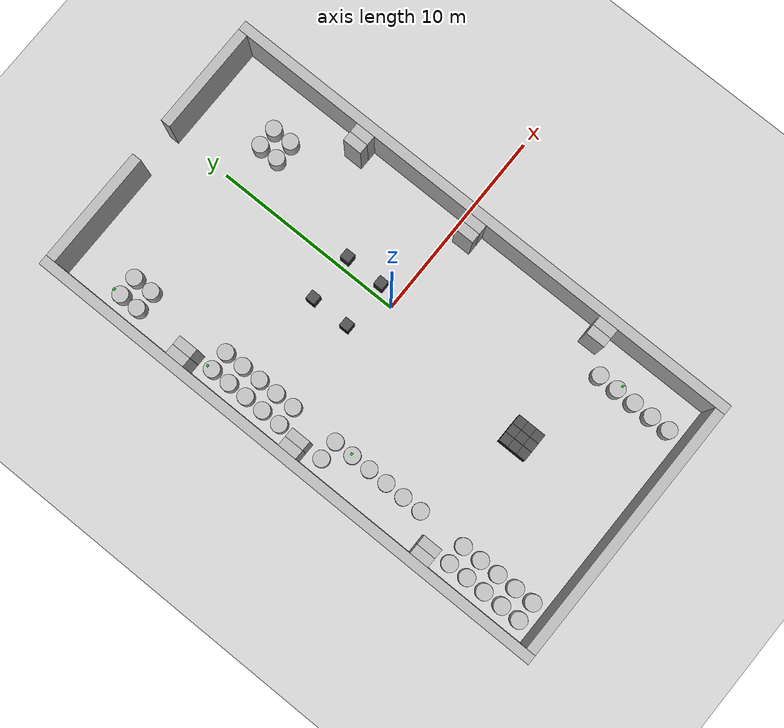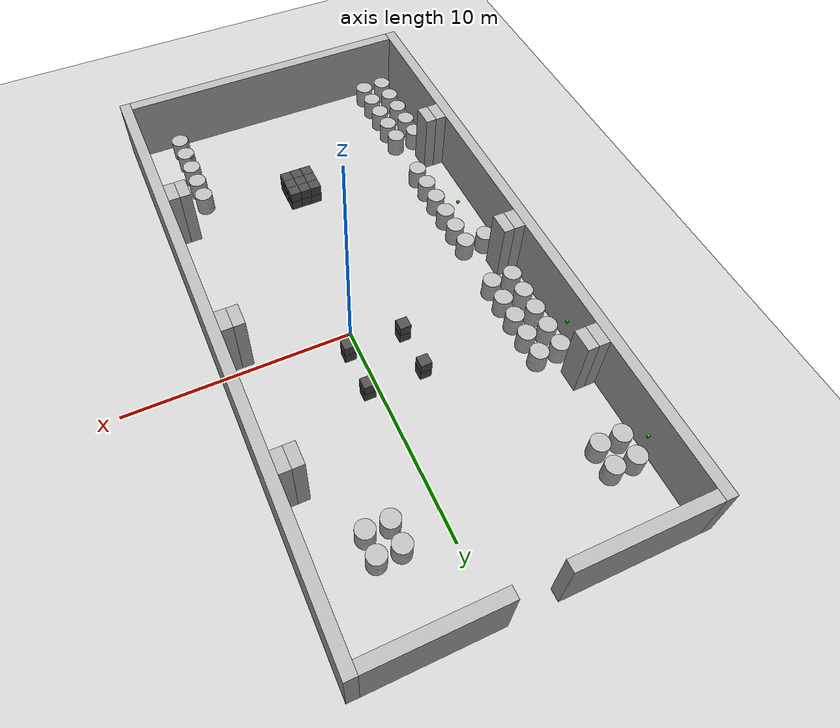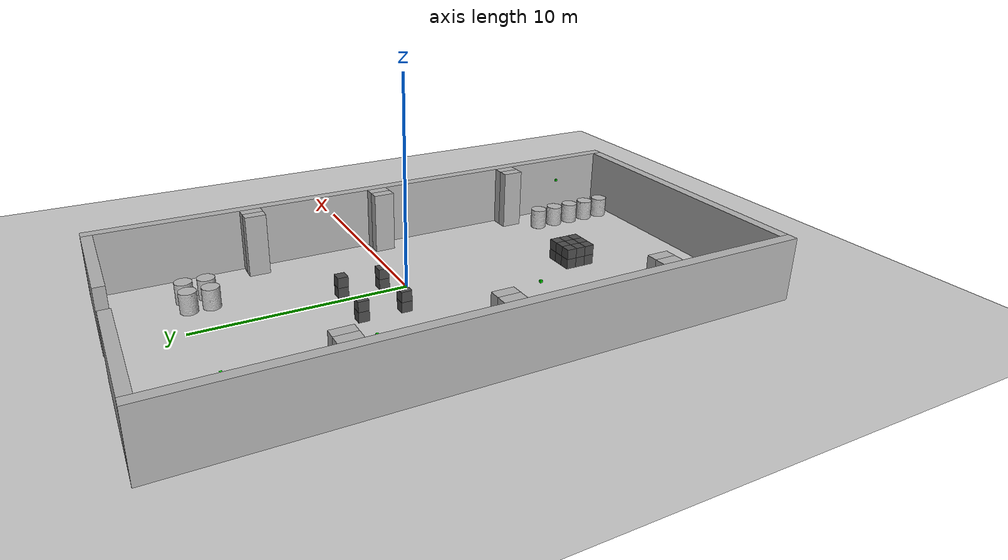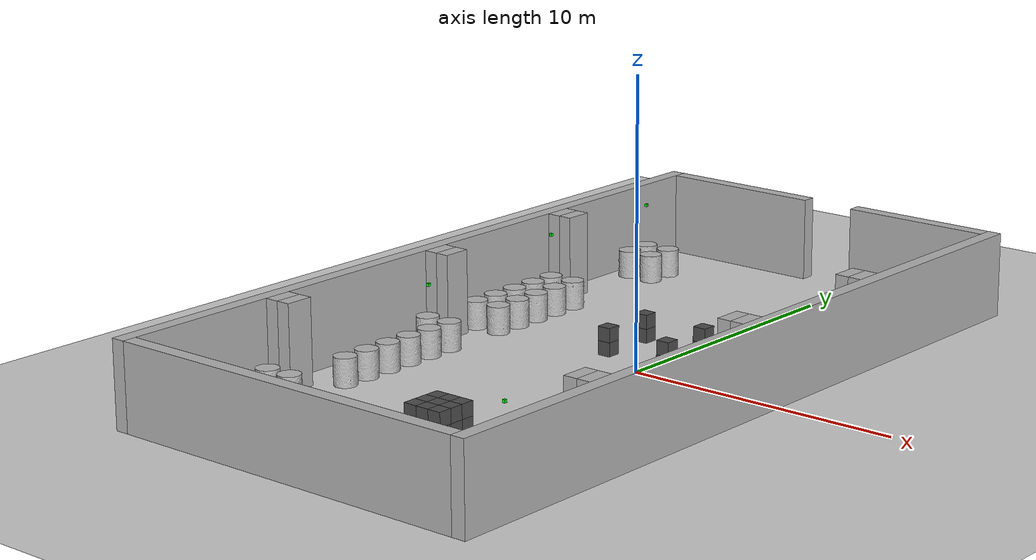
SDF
<sdf version="1.6">
 <world name="default">
  <light name="sun" type="directional">
   <cast_shadows>0</cast_shadows>
   <pose>0 0 10 0 -0 0</pose>
   <diffuse>0.8 0.8 0.8 1</diffuse>
   <specular>0.2 0.2 0.2 1</specular>
   <attenuation>
    <range>1000</range>
    <constant>0.9</constant>
    <linear>0.01</linear>
    <quadratic>0.001</quadratic>
   </attenuation>
   <direction>-0.5 0.1 -0.9</direction>
  </light>
  <include><uri>model://ground_plane</uri></include>
  <gravity>0 0 -9.8</gravity>
  <magnetic_field>6e-06 2.3e-05 -4.2e-05</magnetic_field>
  <atmosphere type="adiabatic"/>
  <physics default="0" name="default_physics" type="ode">
   <max_step_size>0.001</max_step_size>
   <real_time_factor>1</real_time_factor>
   <real_time_update_rate>1000</real_time_update_rate>
  </physics>
  <scene><ambient>0.4 0.4 0.4 1</ambient><background>0.7 0.7 0.7 1</background><shadows>0</shadows></scene>
  <spherical_coordinates>
   <surface_model>EARTH_WGS84</surface_model>
   <latitude_deg>0</latitude_deg>
   <longitude_deg>0</longitude_deg>
   <elevation>0</elevation>
   <heading_deg>0</heading_deg>
  </spherical_coordinates>
  <model name="wall_0">
   <pose frame="sim_world">-8.5 -0.75 1.5 0 0 0</pose>
   <static>True</static>
   <link name="wall_0_link">
    <inertial>
     <mass>100</mass>
     <inertia>
      <ixx>0.166667</ixx>
      <ixy>0</ixy>
      <ixz>0</ixz>
      <iyy>0.166667</iyy>
      <iyz>0</iyz>
      <izz>0.166667</izz>
     </inertia>
    </inertial>
    <collision name="wall_0_collision">
     <geometry><box><size>0.5 28.0 3.0</size></box></geometry>
     <max_contacts>100</max_contacts>
    </collision>
    <visual name="wall_0_visual">
     <geometry><box><size>0.5 28.0 3.0</size></box></geometry>
     <material><ambient>0.7 0.7 0.7 1</ambient><diffuse>0.7 0.7 0.7 1</diffuse></material>
    </visual>
   </link>
  </model>
  <model name="wall_1">
   <pose frame="sim_world">-8.0 -8.25 1.5 0 0 0</pose>
   <static>True</static>
   <link name="wall_1_link">
    <inertial>
     <mass>100</mass>
     <inertia>
      <ixx>0.166667</ixx>
      <ixy>0</ixy>
      <ixz>0</ixz>
      <iyy>0.166667</iyy>
      <iyz>0</iyz>
      <izz>0.166667</izz>
     </inertia>
    </inertial>
    <collision name="wall_1_collision">
     <geometry><box><size>0.5 1.0 3.0</size></box></geometry>
     <max_contacts>100</max_contacts>
    </collision>
    <visual name="wall_1_visual">
     <geometry><box><size>0.5 1.0 3.0</size></box></geometry>
     <material><ambient>0.7 0.7 0.7 1</ambient><diffuse>0.7 0.7 0.7 1</diffuse></material>
    </visual>
   </link>
  </model>
  <model name="wall_2">
   <pose frame="sim_world">-8.0 -0.75 1.5 0 0 0</pose>
   <static>True</static>
   <link name="wall_2_link">
    <inertial>
     <mass>100</mass>
     <inertia>
      <ixx>0.166667</ixx>
      <ixy>0</ixy>
      <ixz>0</ixz>
      <iyy>0.166667</iyy>
      <iyz>0</iyz>
      <izz>0.166667</izz>
     </inertia>
    </inertial>
    <collision name="wall_2_collision">
     <geometry><box><size>0.5 1.0 3.0</size></box></geometry>
     <max_contacts>100</max_contacts>
    </collision>
    <visual name="wall_2_visual">
     <geometry><box><size>0.5 1.0 3.0</size></box></geometry>
     <material><ambient>0.7 0.7 0.7 1</ambient><diffuse>0.7 0.7 0.7 1</diffuse></material>
    </visual>
   </link>
  </model>
  <model name="wall_3">
   <pose frame="sim_world">-8.0 5.75 1.5 0 0 0</pose>
   <static>True</static>
   <link name="wall_3_link">
    <inertial>
     <mass>100</mass>
     <inertia>
      <ixx>0.166667</ixx>
      <ixy>0</ixy>
      <ixz>0</ixz>
      <iyy>0.166667</iyy>
      <iyz>0</iyz>
      <izz>0.166667</izz>
     </inertia>
    </inertial>
    <collision name="wall_3_collision">
     <geometry><box><size>0.5 1.0 3.0</size></box></geometry>
     <max_contacts>100</max_contacts>
    </collision>
    <visual name="wall_3_visual">
     <geometry><box><size>0.5 1.0 3.0</size></box></geometry>
     <material><ambient>0.7 0.7 0.7 1</ambient><diffuse>0.7 0.7 0.7 1</diffuse></material>
    </visual>
   </link>
  </model>
  <model name="wall_4">
   <pose frame="sim_world">-7.5 -8.25 1.5 0 0 0</pose>
   <static>True</static>
   <link name="wall_4_link">
    <inertial>
     <mass>100</mass>
     <inertia>
      <ixx>0.166667</ixx>
      <ixy>0</ixy>
      <ixz>0</ixz>
      <iyy>0.166667</iyy>
      <iyz>0</iyz>
      <izz>0.166667</izz>
     </inertia>
    </inertial>
    <collision name="wall_4_collision">
     <geometry><box><size>0.5 1.0 3.0</size></box></geometry>
     <max_contacts>100</max_contacts>
    </collision>
    <visual name="wall_4_visual">
     <geometry><box><size>0.5 1.0 3.0</size></box></geometry>
     <material><ambient>0.7 0.7 0.7 1</ambient><diffuse>0.7 0.7 0.7 1</diffuse></material>
    </visual>
   </link>
  </model>
  <model name="wall_5">
   <pose frame="sim_world">-7.5 -0.75 1.5 0 0 0</pose>
   <static>True</static>
   <link name="wall_5_link">
    <inertial>
     <mass>100</mass>
     <inertia>
      <ixx>0.166667</ixx>
      <ixy>0</ixy>
      <ixz>0</ixz>
      <iyy>0.166667</iyy>
      <iyz>0</iyz>
      <izz>0.166667</izz>
     </inertia>
    </inertial>
    <collision name="wall_5_collision">
     <geometry><box><size>0.5 1.0 3.0</size></box></geometry>
     <max_contacts>100</max_contacts>
    </collision>
    <visual name="wall_5_visual">
     <geometry><box><size>0.5 1.0 3.0</size></box></geometry>
     <material><ambient>0.7 0.7 0.7 1</ambient><diffuse>0.7 0.7 0.7 1</diffuse></material>
    </visual>
   </link>
  </model>
  <model name="wall_6">
   <pose frame="sim_world">-7.5 5.75 1.5 0 0 0</pose>
   <static>True</static>
   <link name="wall_6_link">
    <inertial>
     <mass>100</mass>
     <inertia>
      <ixx>0.166667</ixx>
      <ixy>0</ixy>
      <ixz>0</ixz>
      <iyy>0.166667</iyy>
      <iyz>0</iyz>
      <izz>0.166667</izz>
     </inertia>
    </inertial>
    <collision name="wall_6_collision">
     <geometry><box><size>0.5 1.0 3.0</size></box></geometry>
     <max_contacts>100</max_contacts>
    </collision>
    <visual name="wall_6_visual">
     <geometry><box><size>0.5 1.0 3.0</size></box></geometry>
     <material><ambient>0.7 0.7 0.7 1</ambient><diffuse>0.7 0.7 0.7 1</diffuse></material>
    </visual>
   </link>
  </model>
  <model name="wall_7">
   <pose frame="sim_world">4.5 -8.25 1.5 0 0 0</pose>
   <static>True</static>
   <link name="wall_7_link">
    <inertial>
     <mass>100</mass>
     <inertia>
      <ixx>0.166667</ixx>
      <ixy>0</ixy>
      <ixz>0</ixz>
      <iyy>0.166667</iyy>
      <iyz>0</iyz>
      <izz>0.166667</izz>
     </inertia>
    </inertial>
    <collision name="wall_7_collision">
     <geometry><box><size>0.5 1.0 3.0</size></box></geometry>
     <max_contacts>100</max_contacts>
    </collision>
    <visual name="wall_7_visual">
     <geometry><box><size>0.5 1.0 3.0</size></box></geometry>
     <material><ambient>0.7 0.7 0.7 1</ambient><diffuse>0.7 0.7 0.7 1</diffuse></material>
    </visual>
   </link>
  </model>
  <model name="wall_8">
   <pose frame="sim_world">4.5 -0.75 1.5 0 0 0</pose>
   <static>True</static>
   <link name="wall_8_link">
    <inertial>
     <mass>100</mass>
     <inertia>
      <ixx>0.166667</ixx>
      <ixy>0</ixy>
      <ixz>0</ixz>
      <iyy>0.166667</iyy>
      <iyz>0</iyz>
      <izz>0.166667</izz>
     </inertia>
    </inertial>
    <collision name="wall_8_collision">
     <geometry><box><size>0.5 1.0 3.0</size></box></geometry>
     <max_contacts>100</max_contacts>
    </collision>
    <visual name="wall_8_visual">
     <geometry><box><size>0.5 1.0 3.0</size></box></geometry>
     <material><ambient>0.7 0.7 0.7 1</ambient><diffuse>0.7 0.7 0.7 1</diffuse></material>
    </visual>
   </link>
  </model>
  <model name="wall_9">
   <pose frame="sim_world">4.5 5.75 1.5 0 0 0</pose>
   <static>True</static>
   <link name="wall_9_link">
    <inertial>
     <mass>100</mass>
     <inertia>
      <ixx>0.166667</ixx>
      <ixy>0</ixy>
      <ixz>0</ixz>
      <iyy>0.166667</iyy>
      <iyz>0</iyz>
      <izz>0.166667</izz>
     </inertia>
    </inertial>
    <collision name="wall_9_collision">
     <geometry><box><size>0.5 1.0 3.0</size></box></geometry>
     <max_contacts>100</max_contacts>
    </collision>
    <visual name="wall_9_visual">
     <geometry><box><size>0.5 1.0 3.0</size></box></geometry>
     <material><ambient>0.7 0.7 0.7 1</ambient><diffuse>0.7 0.7 0.7 1</diffuse></material>
    </visual>
   </link>
  </model>
  <model name="wall_10">
   <pose frame="sim_world">5.0 -8.25 1.5 0 0 0</pose>
   <static>True</static>
   <link name="wall_10_link">
    <inertial>
     <mass>100</mass>
     <inertia>
      <ixx>0.166667</ixx>
      <ixy>0</ixy>
      <ixz>0</ixz>
      <iyy>0.166667</iyy>
      <iyz>0</iyz>
      <izz>0.166667</izz>
     </inertia>
    </inertial>
    <collision name="wall_10_collision">
     <geometry><box><size>0.5 1.0 3.0</size></box></geometry>
     <max_contacts>100</max_contacts>
    </collision>
    <visual name="wall_10_visual">
     <geometry><box><size>0.5 1.0 3.0</size></box></geometry>
     <material><ambient>0.7 0.7 0.7 1</ambient><diffuse>0.7 0.7 0.7 1</diffuse></material>
    </visual>
   </link>
  </model>
  <model name="wall_11">
   <pose frame="sim_world">5.0 -0.75 1.5 0 0 0</pose>
   <static>True</static>
   <link name="wall_11_link">
    <inertial>
     <mass>100</mass>
     <inertia>
      <ixx>0.166667</ixx>
      <ixy>0</ixy>
      <ixz>0</ixz>
      <iyy>0.166667</iyy>
      <iyz>0</iyz>
      <izz>0.166667</izz>
     </inertia>
    </inertial>
    <collision name="wall_11_collision">
     <geometry><box><size>0.5 1.0 3.0</size></box></geometry>
     <max_contacts>100</max_contacts>
    </collision>
    <visual name="wall_11_visual">
     <geometry><box><size>0.5 1.0 3.0</size></box></geometry>
     <material><ambient>0.7 0.7 0.7 1</ambient><diffuse>0.7 0.7 0.7 1</diffuse></material>
    </visual>
   </link>
  </model>
  <model name="wall_12">
   <pose frame="sim_world">5.0 5.75 1.5 0 0 0</pose>
   <static>True</static>
   <link name="wall_12_link">
    <inertial>
     <mass>100</mass>
     <inertia>
      <ixx>0.166667</ixx>
      <ixy>0</ixy>
      <ixz>0</ixz>
      <iyy>0.166667</iyy>
      <iyz>0</iyz>
      <izz>0.166667</izz>
     </inertia>
    </inertial>
    <collision name="wall_12_collision">
     <geometry><box><size>0.5 1.0 3.0</size></box></geometry>
     <max_contacts>100</max_contacts>
    </collision>
    <visual name="wall_12_visual">
     <geometry><box><size>0.5 1.0 3.0</size></box></geometry>
     <material><ambient>0.7 0.7 0.7 1</ambient><diffuse>0.7 0.7 0.7 1</diffuse></material>
    </visual>
   </link>
  </model>
  <model name="wall_13">
   <pose frame="sim_world">5.5 -0.75 1.5 0 0 0</pose>
   <static>True</static>
   <link name="wall_13_link">
    <inertial>
     <mass>100</mass>
     <inertia>
      <ixx>0.166667</ixx>
      <ixy>0</ixy>
      <ixz>0</ixz>
      <iyy>0.166667</iyy>
      <iyz>0</iyz>
      <izz>0.166667</izz>
     </inertia>
    </inertial>
    <collision name="wall_13_collision">
     <geometry><box><size>0.5 28.0 3.0</size></box></geometry>
     <max_contacts>100</max_contacts>
    </collision>
    <visual name="wall_13_visual">
     <geometry><box><size>0.5 28.0 3.0</size></box></geometry>
     <material><ambient>0.7 0.7 0.7 1</ambient><diffuse>0.7 0.7 0.7 1</diffuse></material>
    </visual>
   </link>
  </model>
  <model name="wall_14">
   <pose frame="sim_world">-1.5 -14.5 1.5 0 0 0</pose>
   <static>True</static>
   <link name="wall_14_link">
    <inertial>
     <mass>100</mass>
     <inertia>
      <ixx>0.166667</ixx>
      <ixy>0</ixy>
      <ixz>0</ixz>
      <iyy>0.166667</iyy>
      <iyz>0</iyz>
      <izz>0.166667</izz>
     </inertia>
    </inertial>
    <collision name="wall_14_collision">
     <geometry><box><size>13.5 0.5 3.0</size></box></geometry>
     <max_contacts>100</max_contacts>
    </collision>
    <visual name="wall_14_visual">
     <geometry><box><size>13.5 0.5 3.0</size></box></geometry>
     <material><ambient>0.7 0.7 0.7 1</ambient><diffuse>0.7 0.7 0.7 1</diffuse></material>
    </visual>
   </link>
  </model>
  <model name="wall_15">
   <pose frame="sim_world">-5.25 13.0 1.5 0 0 0</pose>
   <static>True</static>
   <link name="wall_15_link">
    <inertial>
     <mass>100</mass>
     <inertia>
      <ixx>0.166667</ixx>
      <ixy>0</ixy>
      <ixz>0</ixz>
      <iyy>0.166667</iyy>
      <iyz>0</iyz>
      <izz>0.166667</izz>
     </inertia>
    </inertial>
    <collision name="wall_15_collision">
     <geometry><box><size>6.0 0.5 3.0</size></box></geometry>
     <max_contacts>100</max_contacts>
    </collision>
    <visual name="wall_15_visual">
     <geometry><box><size>6.0 0.5 3.0</size></box></geometry>
     <material><ambient>0.7 0.7 0.7 1</ambient><diffuse>0.7 0.7 0.7 1</diffuse></material>
    </visual>
   </link>
  </model>
  <model name="wall_16">
   <pose frame="sim_world">2.5 13.0 1.5 0 0 0</pose>
   <static>True</static>
   <link name="wall_16_link">
    <inertial>
     <mass>100</mass>
     <inertia>
      <ixx>0.166667</ixx>
      <ixy>0</ixy>
      <ixz>0</ixz>
      <iyy>0.166667</iyy>
      <iyz>0</iyz>
      <izz>0.166667</izz>
     </inertia>
    </inertial>
    <collision name="wall_16_collision">
     <geometry><box><size>5.5 0.5 3.0</size></box></geometry>
     <max_contacts>100</max_contacts>
    </collision>
    <visual name="wall_16_visual">
     <geometry><box><size>5.5 0.5 3.0</size></box></geometry>
     <material><ambient>0.7 0.7 0.7 1</ambient><diffuse>0.7 0.7 0.7 1</diffuse></material>
    </visual>
   </link>
  </model>
  <model name="box_0">
   <pose frame="sim_world">-2.0 1.0 0.25 0 -0 0</pose>
   <static>True</static>
   <link name="box_0_link">
    <inertial>
     <mass>100</mass>
     <inertia>
      <ixx>0.166667</ixx>
      <ixy>0</ixy>
      <ixz>0</ixz>
      <iyy>0.166667</iyy>
      <iyz>0</iyz>
      <izz>0.166667</izz>
     </inertia>
    </inertial>
    <collision name="box_0_collision">
     <geometry><box><size>0.5 0.5 0.5</size></box></geometry>
     <max_contacts>100</max_contacts>
    </collision>
    <visual name="box_0_visual">
     <geometry><box><size>0.5 0.5 0.5</size></box></geometry>
     <material><ambient>0.3 0.3 0.3 1</ambient><diffuse>0.3 0.3 0.3 1</diffuse></material>
    </visual>
   </link>
  </model>
  <model name="box_1">
   <pose frame="sim_world">-2.0 1.0 0.75 0 -0 0</pose>
   <static>True</static>
   <link name="box_1_link">
    <inertial>
     <mass>100</mass>
     <inertia>
      <ixx>0.166667</ixx>
      <ixy>0</ixy>
      <ixz>0</ixz>
      <iyy>0.166667</iyy>
      <iyz>0</iyz>
      <izz>0.166667</izz>
     </inertia>
    </inertial>
    <collision name="box_1_collision">
     <geometry><box><size>0.5 0.5 0.5</size></box></geometry>
     <max_contacts>100</max_contacts>
    </collision>
    <visual name="box_1_visual">
     <geometry><box><size>0.5 0.5 0.5</size></box></geometry>
     <material><ambient>0.3 0.3 0.3 1</ambient><diffuse>0.3 0.3 0.3 1</diffuse></material>
    </visual>
   </link>
  </model>
  <model name="box_2">
   <pose frame="sim_world">-2.0 3.0 0.25 0 -0 0</pose>
   <static>True</static>
   <link name="box_2_link">
    <inertial>
     <mass>100</mass>
     <inertia>
      <ixx>0.166667</ixx>
      <ixy>0</ixy>
      <ixz>0</ixz>
      <iyy>0.166667</iyy>
      <iyz>0</iyz>
      <izz>0.166667</izz>
     </inertia>
    </inertial>
    <collision name="box_2_collision">
     <geometry><box><size>0.5 0.5 0.5</size></box></geometry>
     <max_contacts>100</max_contacts>
    </collision>
    <visual name="box_2_visual">
     <geometry><box><size>0.5 0.5 0.5</size></box></geometry>
     <material><ambient>0.3 0.3 0.3 1</ambient><diffuse>0.3 0.3 0.3 1</diffuse></material>
    </visual>
   </link>
  </model>
  <model name="box_3">
   <pose frame="sim_world">-2.0 3.0 0.75 0 -0 0</pose>
   <static>True</static>
   <link name="box_3_link">
    <inertial>
     <mass>100</mass>
     <inertia>
      <ixx>0.166667</ixx>
      <ixy>0</ixy>
      <ixz>0</ixz>
      <iyy>0.166667</iyy>
      <iyz>0</iyz>
      <izz>0.166667</izz>
     </inertia>
    </inertial>
    <collision name="box_3_collision">
     <geometry><box><size>0.5 0.5 0.5</size></box></geometry>
     <max_contacts>100</max_contacts>
    </collision>
    <visual name="box_3_visual">
     <geometry><box><size>0.5 0.5 0.5</size></box></geometry>
     <material><ambient>0.3 0.3 0.3 1</ambient><diffuse>0.3 0.3 0.3 1</diffuse></material>
    </visual>
   </link>
  </model>
  <model name="box_4">
   <pose frame="sim_world">-1.5 -9.0 0.25 0 -0 0</pose>
   <static>True</static>
   <link name="box_4_link">
    <inertial>
     <mass>100</mass>
     <inertia>
      <ixx>0.166667</ixx>
      <ixy>0</ixy>
      <ixz>0</ixz>
      <iyy>0.166667</iyy>
      <iyz>0</iyz>
      <izz>0.166667</izz>
     </inertia>
    </inertial>
    <collision name="box_4_collision">
     <geometry><box><size>0.5 0.5 0.5</size></box></geometry>
     <max_contacts>100</max_contacts>
    </collision>
    <visual name="box_4_visual">
     <geometry><box><size>0.5 0.5 0.5</size></box></geometry>
     <material><ambient>0.3 0.3 0.3 1</ambient><diffuse>0.3 0.3 0.3 1</diffuse></material>
    </visual>
   </link>
  </model>
  <model name="box_5">
   <pose frame="sim_world">-1.5 -9.0 0.75 0 -0 0</pose>
   <static>True</static>
   <link name="box_5_link">
    <inertial>
     <mass>100</mass>
     <inertia>
      <ixx>0.166667</ixx>
      <ixy>0</ixy>
      <ixz>0</ixz>
      <iyy>0.166667</iyy>
      <iyz>0</iyz>
      <izz>0.166667</izz>
     </inertia>
    </inertial>
    <collision name="box_5_collision">
     <geometry><box><size>0.5 0.5 0.5</size></box></geometry>
     <max_contacts>100</max_contacts>
    </collision>
    <visual name="box_5_visual">
     <geometry><box><size>0.5 0.5 0.5</size></box></geometry>
     <material><ambient>0.3 0.3 0.3 1</ambient><diffuse>0.3 0.3 0.3 1</diffuse></material>
    </visual>
   </link>
  </model>
  <model name="box_6">
   <pose frame="sim_world">-1.5 -8.5 0.25 0 -0 0</pose>
   <static>True</static>
   <link name="box_6_link">
    <inertial>
     <mass>100</mass>
     <inertia>
      <ixx>0.166667</ixx>
      <ixy>0</ixy>
      <ixz>0</ixz>
      <iyy>0.166667</iyy>
      <iyz>0</iyz>
      <izz>0.166667</izz>
     </inertia>
    </inertial>
    <collision name="box_6_collision">
     <geometry><box><size>0.5 0.5 0.5</size></box></geometry>
     <max_contacts>100</max_contacts>
    </collision>
    <visual name="box_6_visual">
     <geometry><box><size>0.5 0.5 0.5</size></box></geometry>
     <material><ambient>0.3 0.3 0.3 1</ambient><diffuse>0.3 0.3 0.3 1</diffuse></material>
    </visual>
   </link>
  </model>
  <model name="box_7">
   <pose frame="sim_world">-1.5 -8.5 0.75 0 -0 0</pose>
   <static>True</static>
   <link name="box_7_link">
    <inertial>
     <mass>100</mass>
     <inertia>
      <ixx>0.166667</ixx>
      <ixy>0</ixy>
      <ixz>0</ixz>
      <iyy>0.166667</iyy>
      <iyz>0</iyz>
      <izz>0.166667</izz>
     </inertia>
    </inertial>
    <collision name="box_7_collision">
     <geometry><box><size>0.5 0.5 0.5</size></box></geometry>
     <max_contacts>100</max_contacts>
    </collision>
    <visual name="box_7_visual">
     <geometry><box><size>0.5 0.5 0.5</size></box></geometry>
     <material><ambient>0.3 0.3 0.3 1</ambient><diffuse>0.3 0.3 0.3 1</diffuse></material>
    </visual>
   </link>
  </model>
  <model name="box_8">
   <pose frame="sim_world">-1.5 -8.0 0.25 0 -0 0</pose>
   <static>True</static>
   <link name="box_8_link">
    <inertial>
     <mass>100</mass>
     <inertia>
      <ixx>0.166667</ixx>
      <ixy>0</ixy>
      <ixz>0</ixz>
      <iyy>0.166667</iyy>
      <iyz>0</iyz>
      <izz>0.166667</izz>
     </inertia>
    </inertial>
    <collision name="box_8_collision">
     <geometry><box><size>0.5 0.5 0.5</size></box></geometry>
     <max_contacts>100</max_contacts>
    </collision>
    <visual name="box_8_visual">
     <geometry><box><size>0.5 0.5 0.5</size></box></geometry>
     <material><ambient>0.3 0.3 0.3 1</ambient><diffuse>0.3 0.3 0.3 1</diffuse></material>
    </visual>
   </link>
  </model>
  <model name="box_9">
   <pose frame="sim_world">-1.5 -8.0 0.75 0 -0 0</pose>
   <static>True</static>
   <link name="box_9_link">
    <inertial>
     <mass>100</mass>
     <inertia>
      <ixx>0.166667</ixx>
      <ixy>0</ixy>
      <ixz>0</ixz>
      <iyy>0.166667</iyy>
      <iyz>0</iyz>
      <izz>0.166667</izz>
     </inertia>
    </inertial>
    <collision name="box_9_collision">
     <geometry><box><size>0.5 0.5 0.5</size></box></geometry>
     <max_contacts>100</max_contacts>
    </collision>
    <visual name="box_9_visual">
     <geometry><box><size>0.5 0.5 0.5</size></box></geometry>
     <material><ambient>0.3 0.3 0.3 1</ambient><diffuse>0.3 0.3 0.3 1</diffuse></material>
    </visual>
   </link>
  </model>
  <model name="box_10">
   <pose frame="sim_world">-1.0 -9.0 0.25 0 -0 0</pose>
   <static>True</static>
   <link name="box_10_link">
    <inertial>
     <mass>100</mass>
     <inertia>
      <ixx>0.166667</ixx>
      <ixy>0</ixy>
      <ixz>0</ixz>
      <iyy>0.166667</iyy>
      <iyz>0</iyz>
      <izz>0.166667</izz>
     </inertia>
    </inertial>
    <collision name="box_10_collision">
     <geometry><box><size>0.5 0.5 0.5</size></box></geometry>
     <max_contacts>100</max_contacts>
    </collision>
    <visual name="box_10_visual">
     <geometry><box><size>0.5 0.5 0.5</size></box></geometry>
     <material><ambient>0.3 0.3 0.3 1</ambient><diffuse>0.3 0.3 0.3 1</diffuse></material>
    </visual>
   </link>
  </model>
  <model name="box_11">
   <pose frame="sim_world">-1.0 -9.0 0.75 0 -0 0</pose>
   <static>True</static>
   <link name="box_11_link">
    <inertial>
     <mass>100</mass>
     <inertia>
      <ixx>0.166667</ixx>
      <ixy>0</ixy>
      <ixz>0</ixz>
      <iyy>0.166667</iyy>
      <iyz>0</iyz>
      <izz>0.166667</izz>
     </inertia>
    </inertial>
    <collision name="box_11_collision">
     <geometry><box><size>0.5 0.5 0.5</size></box></geometry>
     <max_contacts>100</max_contacts>
    </collision>
    <visual name="box_11_visual">
     <geometry><box><size>0.5 0.5 0.5</size></box></geometry>
     <material><ambient>0.3 0.3 0.3 1</ambient><diffuse>0.3 0.3 0.3 1</diffuse></material>
    </visual>
   </link>
  </model>
  <model name="box_12">
   <pose frame="sim_world">-1.0 -8.5 0.25 0 -0 0</pose>
   <static>True</static>
   <link name="box_12_link">
    <inertial>
     <mass>100</mass>
     <inertia>
      <ixx>0.166667</ixx>
      <ixy>0</ixy>
      <ixz>0</ixz>
      <iyy>0.166667</iyy>
      <iyz>0</iyz>
      <izz>0.166667</izz>
     </inertia>
    </inertial>
    <collision name="box_12_collision">
     <geometry><box><size>0.5 0.5 0.5</size></box></geometry>
     <max_contacts>100</max_contacts>
    </collision>
    <visual name="box_12_visual">
     <geometry><box><size>0.5 0.5 0.5</size></box></geometry>
     <material><ambient>0.3 0.3 0.3 1</ambient><diffuse>0.3 0.3 0.3 1</diffuse></material>
    </visual>
   </link>
  </model>
  <model name="box_13">
   <pose frame="sim_world">-1.0 -8.5 0.75 0 -0 0</pose>
   <static>True</static>
   <link name="box_13_link">
    <inertial>
     <mass>100</mass>
     <inertia>
      <ixx>0.166667</ixx>
      <ixy>0</ixy>
      <ixz>0</ixz>
      <iyy>0.166667</iyy>
      <iyz>0</iyz>
      <izz>0.166667</izz>
     </inertia>
    </inertial>
    <collision name="box_13_collision">
     <geometry><box><size>0.5 0.5 0.5</size></box></geometry>
     <max_contacts>100</max_contacts>
    </collision>
    <visual name="box_13_visual">
     <geometry><box><size>0.5 0.5 0.5</size></box></geometry>
     <material><ambient>0.3 0.3 0.3 1</ambient><diffuse>0.3 0.3 0.3 1</diffuse></material>
    </visual>
   </link>
  </model>
  <model name="box_14">
   <pose frame="sim_world">-1.0 -8.0 0.25 0 -0 0</pose>
   <static>True</static>
   <link name="box_14_link">
    <inertial>
     <mass>100</mass>
     <inertia>
      <ixx>0.166667</ixx>
      <ixy>0</ixy>
      <ixz>0</ixz>
      <iyy>0.166667</iyy>
      <iyz>0</iyz>
      <izz>0.166667</izz>
     </inertia>
    </inertial>
    <collision name="box_14_collision">
     <geometry><box><size>0.5 0.5 0.5</size></box></geometry>
     <max_contacts>100</max_contacts>
    </collision>
    <visual name="box_14_visual">
     <geometry><box><size>0.5 0.5 0.5</size></box></geometry>
     <material><ambient>0.3 0.3 0.3 1</ambient><diffuse>0.3 0.3 0.3 1</diffuse></material>
    </visual>
   </link>
  </model>
  <model name="box_15">
   <pose frame="sim_world">-1.0 -8.0 0.75 0 -0 0</pose>
   <static>True</static>
   <link name="box_15_link">
    <inertial>
     <mass>100</mass>
     <inertia>
      <ixx>0.166667</ixx>
      <ixy>0</ixy>
      <ixz>0</ixz>
      <iyy>0.166667</iyy>
      <iyz>0</iyz>
      <izz>0.166667</izz>
     </inertia>
    </inertial>
    <collision name="box_15_collision">
     <geometry><box><size>0.5 0.5 0.5</size></box></geometry>
     <max_contacts>100</max_contacts>
    </collision>
    <visual name="box_15_visual">
     <geometry><box><size>0.5 0.5 0.5</size></box></geometry>
     <material><ambient>0.3 0.3 0.3 1</ambient><diffuse>0.3 0.3 0.3 1</diffuse></material>
    </visual>
   </link>
  </model>
  <model name="box_16">
   <pose frame="sim_world">-0.5 -9.0 0.25 0 -0 0</pose>
   <static>True</static>
   <link name="box_16_link">
    <inertial>
     <mass>100</mass>
     <inertia>
      <ixx>0.166667</ixx>
      <ixy>0</ixy>
      <ixz>0</ixz>
      <iyy>0.166667</iyy>
      <iyz>0</iyz>
      <izz>0.166667</izz>
     </inertia>
    </inertial>
    <collision name="box_16_collision">
     <geometry><box><size>0.5 0.5 0.5</size></box></geometry>
     <max_contacts>100</max_contacts>
    </collision>
    <visual name="box_16_visual">
     <geometry><box><size>0.5 0.5 0.5</size></box></geometry>
     <material><ambient>0.3 0.3 0.3 1</ambient><diffuse>0.3 0.3 0.3 1</diffuse></material>
    </visual>
   </link>
  </model>
  <model name="box_17">
   <pose frame="sim_world">-0.5 -9.0 0.75 0 -0 0</pose>
   <static>True</static>
   <link name="box_17_link">
    <inertial>
     <mass>100</mass>
     <inertia>
      <ixx>0.166667</ixx>
      <ixy>0</ixy>
      <ixz>0</ixz>
      <iyy>0.166667</iyy>
      <iyz>0</iyz>
      <izz>0.166667</izz>
     </inertia>
    </inertial>
    <collision name="box_17_collision">
     <geometry><box><size>0.5 0.5 0.5</size></box></geometry>
     <max_contacts>100</max_contacts>
    </collision>
    <visual name="box_17_visual">
     <geometry><box><size>0.5 0.5 0.5</size></box></geometry>
     <material><ambient>0.3 0.3 0.3 1</ambient><diffuse>0.3 0.3 0.3 1</diffuse></material>
    </visual>
   </link>
  </model>
  <model name="box_18">
   <pose frame="sim_world">-0.5 -8.5 0.25 0 -0 0</pose>
   <static>True</static>
   <link name="box_18_link">
    <inertial>
     <mass>100</mass>
     <inertia>
      <ixx>0.166667</ixx>
      <ixy>0</ixy>
      <ixz>0</ixz>
      <iyy>0.166667</iyy>
      <iyz>0</iyz>
      <izz>0.166667</izz>
     </inertia>
    </inertial>
    <collision name="box_18_collision">
     <geometry><box><size>0.5 0.5 0.5</size></box></geometry>
     <max_contacts>100</max_contacts>
    </collision>
    <visual name="box_18_visual">
     <geometry><box><size>0.5 0.5 0.5</size></box></geometry>
     <material><ambient>0.3 0.3 0.3 1</ambient><diffuse>0.3 0.3 0.3 1</diffuse></material>
    </visual>
   </link>
  </model>
  <model name="box_19">
   <pose frame="sim_world">-0.5 -8.5 0.75 0 -0 0</pose>
   <static>True</static>
   <link name="box_19_link">
    <inertial>
     <mass>100</mass>
     <inertia>
      <ixx>0.166667</ixx>
      <ixy>0</ixy>
      <ixz>0</ixz>
      <iyy>0.166667</iyy>
      <iyz>0</iyz>
      <izz>0.166667</izz>
     </inertia>
    </inertial>
    <collision name="box_19_collision">
     <geometry><box><size>0.5 0.5 0.5</size></box></geometry>
     <max_contacts>100</max_contacts>
    </collision>
    <visual name="box_19_visual">
     <geometry><box><size>0.5 0.5 0.5</size></box></geometry>
     <material><ambient>0.3 0.3 0.3 1</ambient><diffuse>0.3 0.3 0.3 1</diffuse></material>
    </visual>
   </link>
  </model>
  <model name="box_20">
   <pose frame="sim_world">-0.5 -8.0 0.25 0 -0 0</pose>
   <static>True</static>
   <link name="box_20_link">
    <inertial>
     <mass>100</mass>
     <inertia>
      <ixx>0.166667</ixx>
      <ixy>0</ixy>
      <ixz>0</ixz>
      <iyy>0.166667</iyy>
      <iyz>0</iyz>
      <izz>0.166667</izz>
     </inertia>
    </inertial>
    <collision name="box_20_collision">
     <geometry><box><size>0.5 0.5 0.5</size></box></geometry>
     <max_contacts>100</max_contacts>
    </collision>
    <visual name="box_20_visual">
     <geometry><box><size>0.5 0.5 0.5</size></box></geometry>
     <material><ambient>0.3 0.3 0.3 1</ambient><diffuse>0.3 0.3 0.3 1</diffuse></material>
    </visual>
   </link>
  </model>
  <model name="box_21">
   <pose frame="sim_world">-0.5 -8.0 0.75 0 -0 0</pose>
   <static>True</static>
   <link name="box_21_link">
    <inertial>
     <mass>100</mass>
     <inertia>
      <ixx>0.166667</ixx>
      <ixy>0</ixy>
      <ixz>0</ixz>
      <iyy>0.166667</iyy>
      <iyz>0</iyz>
      <izz>0.166667</izz>
     </inertia>
    </inertial>
    <collision name="box_21_collision">
     <geometry><box><size>0.5 0.5 0.5</size></box></geometry>
     <max_contacts>100</max_contacts>
    </collision>
    <visual name="box_21_visual">
     <geometry><box><size>0.5 0.5 0.5</size></box></geometry>
     <material><ambient>0.3 0.3 0.3 1</ambient><diffuse>0.3 0.3 0.3 1</diffuse></material>
    </visual>
   </link>
  </model>
  <model name="box_22">
   <pose frame="sim_world">0.5 1.0 0.25 0 -0 0</pose>
   <static>True</static>
   <link name="box_22_link">
    <inertial>
     <mass>100</mass>
     <inertia>
      <ixx>0.166667</ixx>
      <ixy>0</ixy>
      <ixz>0</ixz>
      <iyy>0.166667</iyy>
      <iyz>0</iyz>
      <izz>0.166667</izz>
     </inertia>
    </inertial>
    <collision name="box_22_collision">
     <geometry><box><size>0.5 0.5 0.5</size></box></geometry>
     <max_contacts>100</max_contacts>
    </collision>
    <visual name="box_22_visual">
     <geometry><box><size>0.5 0.5 0.5</size></box></geometry>
     <material><ambient>0.3 0.3 0.3 1</ambient><diffuse>0.3 0.3 0.3 1</diffuse></material>
    </visual>
   </link>
  </model>
  <model name="box_23">
   <pose frame="sim_world">0.5 1.0 0.75 0 -0 0</pose>
   <static>True</static>
   <link name="box_23_link">
    <inertial>
     <mass>100</mass>
     <inertia>
      <ixx>0.166667</ixx>
      <ixy>0</ixy>
      <ixz>0</ixz>
      <iyy>0.166667</iyy>
      <iyz>0</iyz>
      <izz>0.166667</izz>
     </inertia>
    </inertial>
    <collision name="box_23_collision">
     <geometry><box><size>0.5 0.5 0.5</size></box></geometry>
     <max_contacts>100</max_contacts>
    </collision>
    <visual name="box_23_visual">
     <geometry><box><size>0.5 0.5 0.5</size></box></geometry>
     <material><ambient>0.3 0.3 0.3 1</ambient><diffuse>0.3 0.3 0.3 1</diffuse></material>
    </visual>
   </link>
  </model>
  <model name="box_24">
   <pose frame="sim_world">0.5 3.0 0.25 0 -0 0</pose>
   <static>True</static>
   <link name="box_24_link">
    <inertial>
     <mass>100</mass>
     <inertia>
      <ixx>0.166667</ixx>
      <ixy>0</ixy>
      <ixz>0</ixz>
      <iyy>0.166667</iyy>
      <iyz>0</iyz>
      <izz>0.166667</izz>
     </inertia>
    </inertial>
    <collision name="box_24_collision">
     <geometry><box><size>0.5 0.5 0.5</size></box></geometry>
     <max_contacts>100</max_contacts>
    </collision>
    <visual name="box_24_visual">
     <geometry><box><size>0.5 0.5 0.5</size></box></geometry>
     <material><ambient>0.3 0.3 0.3 1</ambient><diffuse>0.3 0.3 0.3 1</diffuse></material>
    </visual>
   </link>
  </model>
  <model name="box_25">
   <pose frame="sim_world">0.5 3.0 0.75 0 -0 0</pose>
   <static>True</static>
   <link name="box_25_link">
    <inertial>
     <mass>100</mass>
     <inertia>
      <ixx>0.166667</ixx>
      <ixy>0</ixy>
      <ixz>0</ixz>
      <iyy>0.166667</iyy>
      <iyz>0</iyz>
      <izz>0.166667</izz>
     </inertia>
    </inertial>
    <collision name="box_25_collision">
     <geometry><box><size>0.5 0.5 0.5</size></box></geometry>
     <max_contacts>100</max_contacts>
    </collision>
    <visual name="box_25_visual">
     <geometry><box><size>0.5 0.5 0.5</size></box></geometry>
     <material><ambient>0.3 0.3 0.3 1</ambient><diffuse>0.3 0.3 0.3 1</diffuse></material>
    </visual>
   </link>
  </model>
  <model name="barrel_0">
   <pose>-7.49946386043 -13.4956394423 0.5 0 -0 0</pose>
   <static>true</static>
   <link name="link_barrel_0">
    <collision name="collision_barrel_0">
     <geometry><mesh><uri>model://barrel_store_custom/models/barrel_0.dae</uri></mesh></geometry>
    </collision>
    <visual name="visual_barrel_0">
     <geometry><mesh><uri>model://barrel_store_custom/models/barrel_0.dae</uri></mesh></geometry>
    </visual>
   </link>
  </model>
  <model name="barrel_1">
   <pose>-7.49531910349 -12.4995036273 0.5 0 -0 0</pose>
   <static>true</static>
   <link name="link_barrel_1">
    <collision name="collision_barrel_1">
     <geometry><mesh><uri>model://barrel_store_custom/models/barrel_1.dae</uri></mesh></geometry>
    </collision>
    <visual name="visual_barrel_1">
     <geometry><mesh><uri>model://barrel_store_custom/models/barrel_1.dae</uri></mesh></geometry>
    </visual>
   </link>
  </model>
  <model name="barrel_2">
   <pose>-7.50325126906 -11.4971504168 0.5 0 -0 0</pose>
   <static>true</static>
   <link name="link_barrel_2">
    <collision name="collision_barrel_2">
     <geometry><mesh><uri>model://barrel_store_custom/models/barrel_2.dae</uri></mesh></geometry>
    </collision>
    <visual name="visual_barrel_2">
     <geometry><mesh><uri>model://barrel_store_custom/models/barrel_2.dae</uri></mesh></geometry>
    </visual>
   </link>
  </model>
  <model name="barrel_3">
   <pose>-7.49551055436 -10.4985981043 0.5 0 -0 0</pose>
   <static>true</static>
   <link name="link_barrel_3">
    <collision name="collision_barrel_3">
     <geometry><mesh><uri>model://barrel_store_custom/models/barrel_3.dae</uri></mesh></geometry>
    </collision>
    <visual name="visual_barrel_3">
     <geometry><mesh><uri>model://barrel_store_custom/models/barrel_3.dae</uri></mesh></geometry>
    </visual>
   </link>
  </model>
  <model name="barrel_4">
   <pose>-7.50290582448 -9.49903662212 0.5 0 -0 0</pose>
   <static>true</static>
   <link name="link_barrel_4">
    <collision name="collision_barrel_4">
     <geometry><mesh><uri>model://barrel_store_custom/models/barrel_4.dae</uri></mesh></geometry>
    </collision>
    <visual name="visual_barrel_4">
     <geometry><mesh><uri>model://barrel_store_custom/models/barrel_4.dae</uri></mesh></geometry>
    </visual>
   </link>
  </model>
  <model name="barrel_10">
   <pose>-7.50114239477 -1.9993578155 0.5 0 -0 0</pose>
   <static>true</static>
   <link name="link_barrel_10">
    <collision name="collision_barrel_10">
     <geometry><mesh><uri>model://barrel_store_custom/models/barrel_10.dae</uri></mesh></geometry>
    </collision>
    <visual name="visual_barrel_10">
     <geometry><mesh><uri>model://barrel_store_custom/models/barrel_10.dae</uri></mesh></geometry>
    </visual>
   </link>
  </model>
  <model name="barrel_11">
   <pose>-7.50279670955 0.49588956778 0.5 0 -0 0</pose>
   <static>true</static>
   <link name="link_barrel_11">
    <collision name="collision_barrel_11">
     <geometry><mesh><uri>model://barrel_store_custom/models/barrel_11.dae</uri></mesh></geometry>
    </collision>
    <visual name="visual_barrel_11">
     <geometry><mesh><uri>model://barrel_store_custom/models/barrel_11.dae</uri></mesh></geometry>
    </visual>
   </link>
  </model>
  <model name="barrel_12">
   <pose>-7.50300625578 1.49810745039 0.5 0 -0 0</pose>
   <static>true</static>
   <link name="link_barrel_12">
    <collision name="collision_barrel_12">
     <geometry><mesh><uri>model://barrel_store_custom/models/barrel_12.dae</uri></mesh></geometry>
    </collision>
    <visual name="visual_barrel_12">
     <geometry><mesh><uri>model://barrel_store_custom/models/barrel_12.dae</uri></mesh></geometry>
    </visual>
   </link>
  </model>
  <model name="barrel_13">
   <pose>-7.49558838549 2.49713480999 0.5 0 -0 0</pose>
   <static>true</static>
   <link name="link_barrel_13">
    <collision name="collision_barrel_13">
     <geometry><mesh><uri>model://barrel_store_custom/models/barrel_13.dae</uri></mesh></geometry>
    </collision>
    <visual name="visual_barrel_13">
     <geometry><mesh><uri>model://barrel_store_custom/models/barrel_13.dae</uri></mesh></geometry>
    </visual>
   </link>
  </model>
  <model name="barrel_14">
   <pose>-7.50188878479 3.49967507384 0.5 0 -0 0</pose>
   <static>true</static>
   <link name="link_barrel_14">
    <collision name="collision_barrel_14">
     <geometry><mesh><uri>model://barrel_store_custom/models/barrel_14.dae</uri></mesh></geometry>
    </collision>
    <visual name="visual_barrel_14">
     <geometry><mesh><uri>model://barrel_store_custom/models/barrel_14.dae</uri></mesh></geometry>
    </visual>
   </link>
  </model>
  <model name="barrel_15">
   <pose>-7.50159085069 4.49686885913 0.5 0 -0 0</pose>
   <static>true</static>
   <link name="link_barrel_15">
    <collision name="collision_barrel_15">
     <geometry><mesh><uri>model://barrel_store_custom/models/barrel_15.dae</uri></mesh></geometry>
    </collision>
    <visual name="visual_barrel_15">
     <geometry><mesh><uri>model://barrel_store_custom/models/barrel_15.dae</uri></mesh></geometry>
    </visual>
   </link>
   <model name="radiation_source_barrel_15">
    <pose>0.00109201669693 0.00354701280594 -1.72853469849e-06 0 0 0</pose>
    <static>true</static>
    <link name="link_radiation_source_barrel_15">
     <visual name="visual_radiation_source_barrel_15_0">
      <geometry><box><size>0.1 0.1 0.1</size></box></geometry>
      <material><ambient>1 0.0  0 1.0</ambient><diffuse>1 0.0  0 1.0</diffuse></material>
     </visual>
     <visual name="visual_radiation_source_barrel_15_1">
      <pose>0 0 2.0 0 0 0</pose>
      <geometry><box><size>0.1 0.1 0.1</size></box></geometry>
      <material><ambient>0 1.0  0 1.0</ambient><diffuse>0 1.0  0 1.0</diffuse></material>
     </visual>
     <sensor name="radiation_source_barrel_15" type="radiation_source">
      <always_on>1</always_on>
      <update_rate>1.0</update_rate>
      <topic>source_1/gamma</topic>
      <plugin filename="libradiation_source_plugin.so" name="radiation_source_plugin"/>
     </sensor>
    </link>
   </model>
  </model>
  <model name="barrel_16">
   <pose>-7.50246693743 9.0035488383 0.5 0 -0 0</pose>
   <static>true</static>
   <link name="link_barrel_16">
    <collision name="collision_barrel_16">
     <geometry><mesh><uri>model://barrel_store_custom/models/barrel_16.dae</uri></mesh></geometry>
    </collision>
    <visual name="visual_barrel_16">
     <geometry><mesh><uri>model://barrel_store_custom/models/barrel_16.dae</uri></mesh></geometry>
    </visual>
   </link>
  </model>
  <model name="barrel_17">
   <pose>-7.50246590527 9.99768880188 0.5 0 -0 0</pose>
   <static>true</static>
   <link name="link_barrel_17">
    <collision name="collision_barrel_17">
     <geometry><mesh><uri>model://barrel_store_custom/models/barrel_17.dae</uri></mesh></geometry>
    </collision>
    <visual name="visual_barrel_17">
     <geometry><mesh><uri>model://barrel_store_custom/models/barrel_17.dae</uri></mesh></geometry>
    </visual>
   </link>
   <model name="radiation_source_barrel_17">
    <pose>0.0042559504509 -0.000965476036072 -1.72853469849e-06 0 0 0</pose>
    <static>true</static>
    <link name="link_radiation_source_barrel_17">
     <visual name="visual_radiation_source_barrel_17_0">
      <geometry><box><size>0.1 0.1 0.1</size></box></geometry>
      <material><ambient>1 0.0  0 1.0</ambient><diffuse>1 0.0  0 1.0</diffuse></material>
     </visual>
     <visual name="visual_radiation_source_barrel_17_1">
      <pose>0 0 2.0 0 0 0</pose>
      <geometry><box><size>0.1 0.1 0.1</size></box></geometry>
      <material><ambient>0 1.0  0 1.0</ambient><diffuse>0 1.0  0 1.0</diffuse></material>
     </visual>
     <sensor name="radiation_source_barrel_17" type="radiation_source">
      <always_on>1</always_on>
      <update_rate>1.0</update_rate>
      <topic>source_3/gamma</topic>
      <plugin filename="libradiation_source_plugin.so" name="radiation_source_plugin"/>
     </sensor>
    </link>
   </model>
  </model>
  <model name="barrel_18">
   <pose>-6.49693306228 -13.5004257762 0.5 0 -0 0</pose>
   <static>true</static>
   <link name="link_barrel_18">
    <collision name="collision_barrel_18">
     <geometry><mesh><uri>model://barrel_store_custom/models/barrel_18.dae</uri></mesh></geometry>
    </collision>
    <visual name="visual_barrel_18">
     <geometry><mesh><uri>model://barrel_store_custom/models/barrel_18.dae</uri></mesh></geometry>
    </visual>
   </link>
  </model>
  <model name="barrel_19">
   <pose>-6.49695345535 -12.5018535626 0.5 0 -0 0</pose>
   <static>true</static>
   <link name="link_barrel_19">
    <collision name="collision_barrel_19">
     <geometry><mesh><uri>model://barrel_store_custom/models/barrel_19.dae</uri></mesh></geometry>
    </collision>
    <visual name="visual_barrel_19">
     <geometry><mesh><uri>model://barrel_store_custom/models/barrel_19.dae</uri></mesh></geometry>
    </visual>
   </link>
  </model>
  <model name="barrel_20">
   <pose>-6.50212149624 -11.496830809 0.5 0 -0 0</pose>
   <static>true</static>
   <link name="link_barrel_20">
    <collision name="collision_barrel_20">
     <geometry><mesh><uri>model://barrel_store_custom/models/barrel_20.dae</uri></mesh></geometry>
    </collision>
    <visual name="visual_barrel_20">
     <geometry><mesh><uri>model://barrel_store_custom/models/barrel_20.dae</uri></mesh></geometry>
    </visual>
   </link>
  </model>
  <model name="barrel_21">
   <pose>-6.50454517076 -10.4964281128 0.5 0 -0 0</pose>
   <static>true</static>
   <link name="link_barrel_21">
    <collision name="collision_barrel_21">
     <geometry><mesh><uri>model://barrel_store_custom/models/barrel_21.dae</uri></mesh></geometry>
    </collision>
    <visual name="visual_barrel_21">
     <geometry><mesh><uri>model://barrel_store_custom/models/barrel_21.dae</uri></mesh></geometry>
    </visual>
   </link>
  </model>
  <model name="barrel_22">
   <pose>-6.50299599045 -9.50155309343 0.5 0 -0 0</pose>
   <static>true</static>
   <link name="link_barrel_22">
    <collision name="collision_barrel_22">
     <geometry><mesh><uri>model://barrel_store_custom/models/barrel_22.dae</uri></mesh></geometry>
    </collision>
    <visual name="visual_barrel_22">
     <geometry><mesh><uri>model://barrel_store_custom/models/barrel_22.dae</uri></mesh></geometry>
    </visual>
   </link>
  </model>
  <model name="barrel_23">
   <pose>-6.49629804898 -6.99982288057 0.5 0 -0 0</pose>
   <static>true</static>
   <link name="link_barrel_23">
    <collision name="collision_barrel_23">
     <geometry><mesh><uri>model://barrel_store_custom/models/barrel_23.dae</uri></mesh></geometry>
    </collision>
    <visual name="visual_barrel_23">
     <geometry><mesh><uri>model://barrel_store_custom/models/barrel_23.dae</uri></mesh></geometry>
    </visual>
   </link>
  </model>
  <model name="barrel_24">
   <pose>-6.50458308935 -5.99709717446 0.5 0 -0 0</pose>
   <static>true</static>
   <link name="link_barrel_24">
    <collision name="collision_barrel_24">
     <geometry><mesh><uri>model://barrel_store_custom/models/barrel_24.dae</uri></mesh></geometry>
    </collision>
    <visual name="visual_barrel_24">
     <geometry><mesh><uri>model://barrel_store_custom/models/barrel_24.dae</uri></mesh></geometry>
    </visual>
   </link>
  </model>
  <model name="barrel_25">
   <pose>-6.50007409914 -4.99692166561 0.5 0 -0 0</pose>
   <static>true</static>
   <link name="link_barrel_25">
    <collision name="collision_barrel_25">
     <geometry><mesh><uri>model://barrel_store_custom/models/barrel_25.dae</uri></mesh></geometry>
    </collision>
    <visual name="visual_barrel_25">
     <geometry><mesh><uri>model://barrel_store_custom/models/barrel_25.dae</uri></mesh></geometry>
    </visual>
   </link>
  </model>
  <model name="barrel_26">
   <pose>-6.50052807486 -4.00340981999 0.5 0 -0 0</pose>
   <static>true</static>
   <link name="link_barrel_26">
    <collision name="collision_barrel_26">
     <geometry><mesh><uri>model://barrel_store_custom/models/barrel_26.dae</uri></mesh></geometry>
    </collision>
    <visual name="visual_barrel_26">
     <geometry><mesh><uri>model://barrel_store_custom/models/barrel_26.dae</uri></mesh></geometry>
    </visual>
   </link>
  </model>
  <model name="barrel_27">
   <pose>-6.50053900119 -3.00223052578 0.5 0 -0 0</pose>
   <static>true</static>
   <link name="link_barrel_27">
    <collision name="collision_barrel_27">
     <geometry><mesh><uri>model://barrel_store_custom/models/barrel_27.dae</uri></mesh></geometry>
    </collision>
    <visual name="visual_barrel_27">
     <geometry><mesh><uri>model://barrel_store_custom/models/barrel_27.dae</uri></mesh></geometry>
    </visual>
   </link>
   <model name="radiation_source_barrel_27">
    <pose>0.00483101606369 -0.000752449035645 -1.72853469849e-06 0 0 0</pose>
    <static>true</static>
    <link name="link_radiation_source_barrel_27">
     <visual name="visual_radiation_source_barrel_27_0">
      <geometry><box><size>0.1 0.1 0.1</size></box></geometry>
      <material><ambient>1 0.0  0 1.0</ambient><diffuse>1 0.0  0 1.0</diffuse></material>
     </visual>
     <visual name="visual_radiation_source_barrel_27_1">
      <pose>0 0 2.0 0 0 0</pose>
      <geometry><box><size>0.1 0.1 0.1</size></box></geometry>
      <material><ambient>0 1.0  0 1.0</ambient><diffuse>0 1.0  0 1.0</diffuse></material>
     </visual>
     <sensor name="radiation_source_barrel_27" type="radiation_source">
      <always_on>1</always_on>
      <update_rate>1.0</update_rate>
      <topic>source_4/gamma</topic>
      <plugin filename="libradiation_source_plugin.so" name="radiation_source_plugin"/>
     </sensor>
    </link>
   </model>
  </model>
  <model name="barrel_28">
   <pose>-6.50231335976 -2.00365457262 0.5 0 -0 0</pose>
   <static>true</static>
   <link name="link_barrel_28">
    <collision name="collision_barrel_28">
     <geometry><mesh><uri>model://barrel_store_custom/models/barrel_28.dae</uri></mesh></geometry>
    </collision>
    <visual name="visual_barrel_28">
     <geometry><mesh><uri>model://barrel_store_custom/models/barrel_28.dae</uri></mesh></geometry>
    </visual>
   </link>
  </model>
  <model name="barrel_29">
   <pose>-6.49702010359 0.501031346884 0.5 0 -0 0</pose>
   <static>true</static>
   <link name="link_barrel_29">
    <collision name="collision_barrel_29">
     <geometry><mesh><uri>model://barrel_store_custom/models/barrel_29.dae</uri></mesh></geometry>
    </collision>
    <visual name="visual_barrel_29">
     <geometry><mesh><uri>model://barrel_store_custom/models/barrel_29.dae</uri></mesh></geometry>
    </visual>
   </link>
  </model>
  <model name="barrel_30">
   <pose>-6.4998662537 1.50041963211 0.5 0 -0 0</pose>
   <static>true</static>
   <link name="link_barrel_30">
    <collision name="collision_barrel_30">
     <geometry><mesh><uri>model://barrel_store_custom/models/barrel_30.dae</uri></mesh></geometry>
    </collision>
    <visual name="visual_barrel_30">
     <geometry><mesh><uri>model://barrel_store_custom/models/barrel_30.dae</uri></mesh></geometry>
    </visual>
   </link>
  </model>
  <model name="barrel_31">
   <pose>-6.49925142537 2.49520741355 0.5 0 -0 0</pose>
   <static>true</static>
   <link name="link_barrel_31">
    <collision name="collision_barrel_31">
     <geometry><mesh><uri>model://barrel_store_custom/models/barrel_31.dae</uri></mesh></geometry>
    </collision>
    <visual name="visual_barrel_31">
     <geometry><mesh><uri>model://barrel_store_custom/models/barrel_31.dae</uri></mesh></geometry>
    </visual>
   </link>
  </model>
  <model name="barrel_32">
   <pose>-6.50001449846 3.49739395479 0.5 0 -0 0</pose>
   <static>true</static>
   <link name="link_barrel_32">
    <collision name="collision_barrel_32">
     <geometry><mesh><uri>model://barrel_store_custom/models/barrel_32.dae</uri></mesh></geometry>
    </collision>
    <visual name="visual_barrel_32">
     <geometry><mesh><uri>model://barrel_store_custom/models/barrel_32.dae</uri></mesh></geometry>
    </visual>
   </link>
  </model>
  <model name="barrel_33">
   <pose>-6.50031037946 4.50427497851 0.5 0 -0 0</pose>
   <static>true</static>
   <link name="link_barrel_33">
    <collision name="collision_barrel_33">
     <geometry><mesh><uri>model://barrel_store_custom/models/barrel_33.dae</uri></mesh></geometry>
    </collision>
    <visual name="visual_barrel_33">
     <geometry><mesh><uri>model://barrel_store_custom/models/barrel_33.dae</uri></mesh></geometry>
    </visual>
   </link>
  </model>
  <model name="barrel_34">
   <pose>-6.50054506113 8.99662204493 0.5 0 -0 0</pose>
   <static>true</static>
   <link name="link_barrel_34">
    <collision name="collision_barrel_34">
     <geometry><mesh><uri>model://barrel_store_custom/models/barrel_34.dae</uri></mesh></geometry>
    </collision>
    <visual name="visual_barrel_34">
     <geometry><mesh><uri>model://barrel_store_custom/models/barrel_34.dae</uri></mesh></geometry>
    </visual>
   </link>
  </model>
  <model name="barrel_35">
   <pose>-6.497243487 10.0045745159 0.5 0 -0 0</pose>
   <static>true</static>
   <link name="link_barrel_35">
    <collision name="collision_barrel_35">
     <geometry><mesh><uri>model://barrel_store_custom/models/barrel_35.dae</uri></mesh></geometry>
    </collision>
    <visual name="visual_barrel_35">
     <geometry><mesh><uri>model://barrel_store_custom/models/barrel_35.dae</uri></mesh></geometry>
    </visual>
   </link>
  </model>
  <model name="barrel_36">
   <pose>1.99836590304 8.50486053371 0.5 0 -0 0</pose>
   <static>true</static>
   <link name="link_barrel_36">
    <collision name="collision_barrel_36">
     <geometry><mesh><uri>model://barrel_store_custom/models/barrel_36.dae</uri></mesh></geometry>
    </collision>
    <visual name="visual_barrel_36">
     <geometry><mesh><uri>model://barrel_store_custom/models/barrel_36.dae</uri></mesh></geometry>
    </visual>
   </link>
  </model>
  <model name="barrel_37">
   <pose>1.99944636211 9.49980742181 0.5 0 -0 0</pose>
   <static>true</static>
   <link name="link_barrel_37">
    <collision name="collision_barrel_37">
     <geometry><mesh><uri>model://barrel_store_custom/models/barrel_37.dae</uri></mesh></geometry>
    </collision>
    <visual name="visual_barrel_37">
     <geometry><mesh><uri>model://barrel_store_custom/models/barrel_37.dae</uri></mesh></geometry>
    </visual>
   </link>
  </model>
  <model name="barrel_38">
   <pose>2.99646932365 8.49600360382 0.5 0 -0 0</pose>
   <static>true</static>
   <link name="link_barrel_38">
    <collision name="collision_barrel_38">
     <geometry><mesh><uri>model://barrel_store_custom/models/barrel_38.dae</uri></mesh></geometry>
    </collision>
    <visual name="visual_barrel_38">
     <geometry><mesh><uri>model://barrel_store_custom/models/barrel_38.dae</uri></mesh></geometry>
    </visual>
   </link>
  </model>
  <model name="barrel_39">
   <pose>2.99528349745 9.49799642115 0.5 0 -0 0</pose>
   <static>true</static>
   <link name="link_barrel_39">
    <collision name="collision_barrel_39">
     <geometry><mesh><uri>model://barrel_store_custom/models/barrel_39.dae</uri></mesh></geometry>
    </collision>
    <visual name="visual_barrel_39">
     <geometry><mesh><uri>model://barrel_store_custom/models/barrel_39.dae</uri></mesh></geometry>
    </visual>
   </link>
  </model>
  <model name="barrel_40">
   <pose>3.50478503802 -13.4952279437 0.5 0 -0 0</pose>
   <static>true</static>
   <link name="link_barrel_40">
    <collision name="collision_barrel_40">
     <geometry><mesh><uri>model://barrel_store_custom/models/barrel_40.dae</uri></mesh></geometry>
    </collision>
    <visual name="visual_barrel_40">
     <geometry><mesh><uri>model://barrel_store_custom/models/barrel_40.dae</uri></mesh></geometry>
    </visual>
   </link>
  </model>
  <model name="barrel_41">
   <pose>3.49748140139 -12.5000571083 0.5 0 -0 0</pose>
   <static>true</static>
   <link name="link_barrel_41">
    <collision name="collision_barrel_41">
     <geometry><mesh><uri>model://barrel_store_custom/models/barrel_41.dae</uri></mesh></geometry>
    </collision>
    <visual name="visual_barrel_41">
     <geometry><mesh><uri>model://barrel_store_custom/models/barrel_41.dae</uri></mesh></geometry>
    </visual>
   </link>
  </model>
  <model name="barrel_42">
   <pose>3.50077971932 -11.4971480165 0.5 0 -0 0</pose>
   <static>true</static>
   <link name="link_barrel_42">
    <collision name="collision_barrel_42">
     <geometry><mesh><uri>model://barrel_store_custom/models/barrel_42.dae</uri></mesh></geometry>
    </collision>
    <visual name="visual_barrel_42">
     <geometry><mesh><uri>model://barrel_store_custom/models/barrel_42.dae</uri></mesh></geometry>
    </visual>
   </link>
  </model>
  <model name="barrel_43">
   <pose>3.50009043412 -10.5032076123 0.5 0 -0 0</pose>
   <static>true</static>
   <link name="link_barrel_43">
    <collision name="collision_barrel_43">
     <geometry><mesh><uri>model://barrel_store_custom/models/barrel_43.dae</uri></mesh></geometry>
    </collision>
    <visual name="visual_barrel_43">
     <geometry><mesh><uri>model://barrel_store_custom/models/barrel_43.dae</uri></mesh></geometry>
    </visual>
   </link>
   <model name="radiation_source_barrel_43">
    <pose>-0.00298047065735 -0.00448846817017 -1.72853469849e-06 0 0 0</pose>
    <static>true</static>
    <link name="link_radiation_source_barrel_43">
     <visual name="visual_radiation_source_barrel_43_0">
      <geometry><box><size>0.1 0.1 0.1</size></box></geometry>
      <material><ambient>1 0.0  0 1.0</ambient><diffuse>1 0.0  0 1.0</diffuse></material>
     </visual>
     <visual name="visual_radiation_source_barrel_43_1">
      <pose>0 0 2.0 0 0 0</pose>
      <geometry><box><size>0.1 0.1 0.1</size></box></geometry>
      <material><ambient>0 1.0  0 1.0</ambient><diffuse>0 1.0  0 1.0</diffuse></material>
     </visual>
     <sensor name="radiation_source_barrel_43" type="radiation_source">
      <always_on>1</always_on>
      <update_rate>1.0</update_rate>
      <topic>source_4/gamma</topic>
      <plugin filename="libradiation_source_plugin.so" name="radiation_source_plugin"/>
     </sensor>
    </link>
   </model>
  </model>
  <model name="barrel_44">
   <pose>3.50022217071 -9.50349951887 0.5 0 -0 0</pose>
   <static>true</static>
   <link name="link_barrel_44">
    <collision name="collision_barrel_44">
     <geometry><mesh><uri>model://barrel_store_custom/models/barrel_44.dae</uri></mesh></geometry>
    </collision>
    <visual name="visual_barrel_44">
     <geometry><mesh><uri>model://barrel_store_custom/models/barrel_44.dae</uri></mesh></geometry>
    </visual>
   </link>
  </model>
  <model name="ground_plane"><link name="ground_plane"/></model>
 </world>
</sdf>
